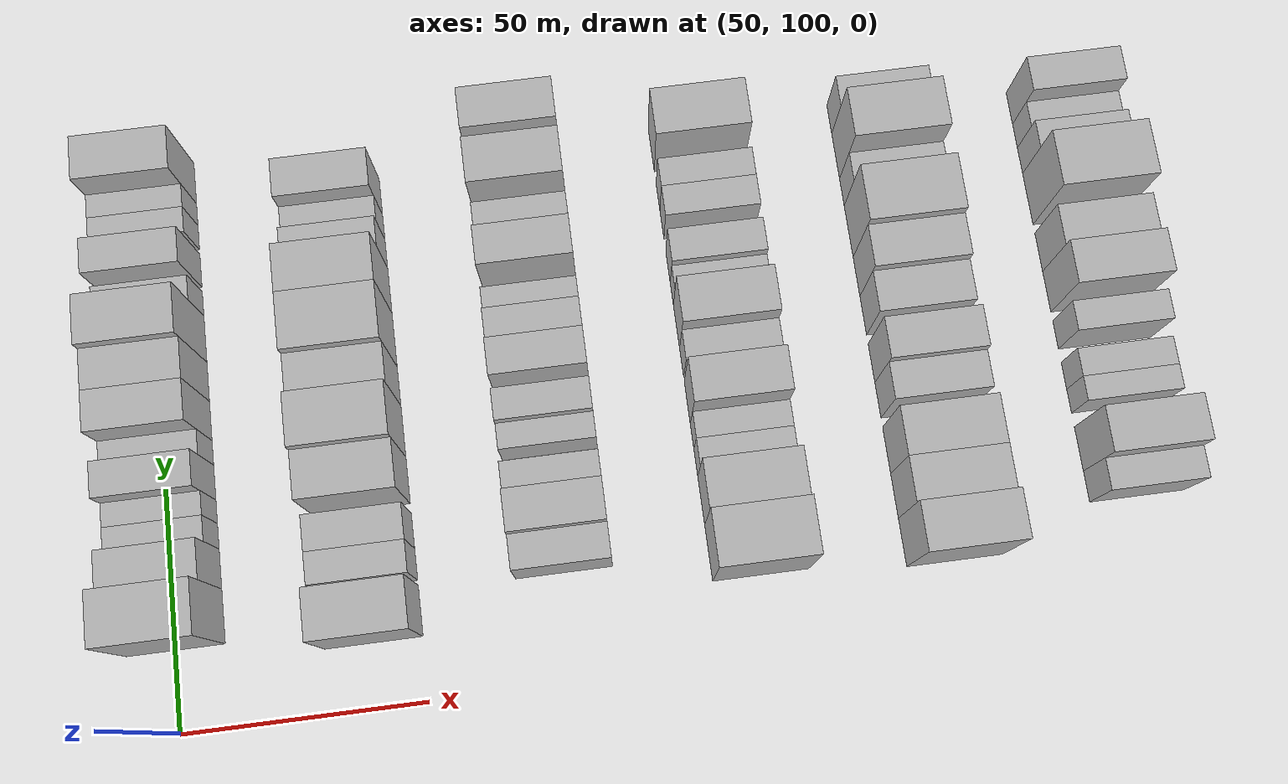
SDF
<sdf version="1.6">
 <world name="default">
  <model name="building_88">
   <static>1</static>
   <pose>50.0000 122.3718 0 0.000000 0.000000 0.000000</pose>
   <link name="link">
    <pose>0 0 12.00 0 0 0</pose>
    <collision name="collision"><geometry><box><size>20.0000 11.1958 24.0000</size></box></geometry></collision>
    <visual name="visual">
     <cast_shadows>0</cast_shadows>
     <geometry><box><size>20.0000 11.1958 24.0000</size></box></geometry>
     <material>
      <script>
       <uri>model://HANNAS_wall/materials/scripts</uri>
       <uri>model://HANNAS_wall/materials/textures</uri>
       <name>vrc/HANNAS_wall</name>
      </script>
     </material>
    </visual>
   </link>
  </model>
  <model name="building_89">
   <static>1</static>
   <pose>50.0000 132.1057 0 0.000000 0.000000 0.000000</pose>
   <link name="link">
    <pose>0 0 9.00 0 0 0</pose>
    <collision name="collision"><geometry><box><size>20.0000 8.2720 18.0000</size></box></geometry></collision>
    <visual name="visual">
     <cast_shadows>0</cast_shadows>
     <geometry><box><size>20.0000 8.2720 18.0000</size></box></geometry>
     <material>
      <script>
       <uri>model://HANNAS_wall/materials/scripts</uri>
       <uri>model://HANNAS_wall/materials/textures</uri>
       <name>vrc/HANNAS_wall</name>
      </script>
     </material>
    </visual>
   </link>
  </model>
  <model name="building_90">
   <static>1</static>
   <pose>50.0000 138.9064 0 0.000000 0.000000 0.000000</pose>
   <link name="link">
    <pose>0 0 6.00 0 0 0</pose>
    <collision name="collision"><geometry><box><size>20.0000 5.3294 12.0000</size></box></geometry></collision>
    <visual name="visual">
     <cast_shadows>0</cast_shadows>
     <geometry><box><size>20.0000 5.3294 12.0000</size></box></geometry>
     <material>
      <script>
       <uri>model://HANNAS_wall/materials/scripts</uri>
       <uri>model://HANNAS_wall/materials/textures</uri>
       <name>vrc/HANNAS_wall</name>
      </script>
     </material>
    </visual>
   </link>
  </model>
  <model name="building_91">
   <static>1</static>
   <pose>50.0000 144.0478 0 0.000000 0.000000 0.000000</pose>
   <link name="link">
    <pose>0 0 6.00 0 0 0</pose>
    <collision name="collision"><geometry><box><size>20.0000 4.9535 12.0000</size></box></geometry></collision>
    <visual name="visual">
     <cast_shadows>0</cast_shadows>
     <geometry><box><size>20.0000 4.9535 12.0000</size></box></geometry>
     <material>
      <script>
       <uri>model://HANNAS_wall/materials/scripts</uri>
       <uri>model://HANNAS_wall/materials/textures</uri>
       <name>vrc/HANNAS_wall</name>
      </script>
     </material>
    </visual>
   </link>
  </model>
  <model name="building_92">
   <static>1</static>
   <pose>50.0000 150.2349 0 0.000000 0.000000 0.000000</pose>
   <link name="link">
    <pose>0 0 9.00 0 0 0</pose>
    <collision name="collision"><geometry><box><size>20.0000 7.4207 18.0000</size></box></geometry></collision>
    <visual name="visual">
     <cast_shadows>0</cast_shadows>
     <geometry><box><size>20.0000 7.4207 18.0000</size></box></geometry>
     <material>
      <script>
       <uri>model://HANNAS_wall/materials/scripts</uri>
       <uri>model://HANNAS_wall/materials/textures</uri>
       <name>vrc/HANNAS_wall</name>
      </script>
     </material>
    </visual>
   </link>
  </model>
  <model name="building_93">
   <static>1</static>
   <pose>50.0000 156.5859 0 0.000000 0.000000 0.000000</pose>
   <link name="link">
    <pose>0 0 6.00 0 0 0</pose>
    <collision name="collision"><geometry><box><size>20.0000 5.2812 12.0000</size></box></geometry></collision>
    <visual name="visual">
     <cast_shadows>0</cast_shadows>
     <geometry><box><size>20.0000 5.2812 12.0000</size></box></geometry>
     <material>
      <script>
       <uri>model://HANNAS_wall/materials/scripts</uri>
       <uri>model://HANNAS_wall/materials/textures</uri>
       <name>vrc/HANNAS_wall</name>
      </script>
     </material>
    </visual>
   </link>
  </model>
  <model name="building_94">
   <static>1</static>
   <pose>50.0000 163.4823 0 0.000000 0.000000 0.000000</pose>
   <link name="link">
    <pose>0 0 10.50 0 0 0</pose>
    <collision name="collision"><geometry><box><size>20.0000 8.5116 21.0000</size></box></geometry></collision>
    <visual name="visual">
     <cast_shadows>0</cast_shadows>
     <geometry><box><size>20.0000 8.5116 21.0000</size></box></geometry>
     <material>
      <script>
       <uri>model://HANNAS_wall/materials/scripts</uri>
       <uri>model://HANNAS_wall/materials/textures</uri>
       <name>vrc/HANNAS_wall</name>
      </script>
     </material>
    </visual>
   </link>
  </model>
  <model name="building_95">
   <static>1</static>
   <pose>50.0000 172.0259 0 0.000000 0.000000 0.000000</pose>
   <link name="link">
    <pose>0 0 10.50 0 0 0</pose>
    <collision name="collision"><geometry><box><size>20.0000 8.5755 21.0000</size></box></geometry></collision>
    <visual name="visual">
     <cast_shadows>0</cast_shadows>
     <geometry><box><size>20.0000 8.5755 21.0000</size></box></geometry>
     <material>
      <script>
       <uri>model://HANNAS_wall/materials/scripts</uri>
       <uri>model://HANNAS_wall/materials/textures</uri>
       <name>vrc/HANNAS_wall</name>
      </script>
     </material>
    </visual>
   </link>
  </model>
  <model name="building_96">
   <static>1</static>
   <pose>50.0000 181.5250 0 0.000000 0.000000 0.000000</pose>
   <link name="link">
    <pose>0 0 12.00 0 0 0</pose>
    <collision name="collision"><geometry><box><size>20.0000 10.4228 24.0000</size></box></geometry></collision>
    <visual name="visual">
     <cast_shadows>0</cast_shadows>
     <geometry><box><size>20.0000 10.4228 24.0000</size></box></geometry>
     <material>
      <script>
       <uri>model://HANNAS_wall/materials/scripts</uri>
       <uri>model://HANNAS_wall/materials/textures</uri>
       <name>vrc/HANNAS_wall</name>
      </script>
     </material>
    </visual>
   </link>
  </model>
  <model name="building_97">
   <static>1</static>
   <pose>50.0000 189.4079 0 0.000000 0.000000 0.000000</pose>
   <link name="link">
    <pose>0 0 6.00 0 0 0</pose>
    <collision name="collision"><geometry><box><size>20.0000 5.3430 12.0000</size></box></geometry></collision>
    <visual name="visual">
     <cast_shadows>0</cast_shadows>
     <geometry><box><size>20.0000 5.3430 12.0000</size></box></geometry>
     <material>
      <script>
       <uri>model://HANNAS_wall/materials/scripts</uri>
       <uri>model://HANNAS_wall/materials/textures</uri>
       <name>vrc/HANNAS_wall</name>
      </script>
     </material>
    </visual>
   </link>
  </model>
  <model name="building_98">
   <static>1</static>
   <pose>50.0000 196.8575 0 0.000000 0.000000 0.000000</pose>
   <link name="link">
    <pose>0 0 9.00 0 0 0</pose>
    <collision name="collision"><geometry><box><size>20.0000 7.5563 18.0000</size></box></geometry></collision>
    <visual name="visual">
     <cast_shadows>0</cast_shadows>
     <geometry><box><size>20.0000 7.5563 18.0000</size></box></geometry>
     <material>
      <script>
       <uri>model://HANNAS_wall/materials/scripts</uri>
       <uri>model://HANNAS_wall/materials/textures</uri>
       <name>vrc/HANNAS_wall</name>
      </script>
     </material>
    </visual>
   </link>
  </model>
  <model name="building_99">
   <static>1</static>
   <pose>50.0000 204.4249 0 0.000000 0.000000 0.000000</pose>
   <link name="link">
    <pose>0 0 6.00 0 0 0</pose>
    <collision name="collision"><geometry><box><size>20.0000 5.5784 12.0000</size></box></geometry></collision>
    <visual name="visual">
     <cast_shadows>0</cast_shadows>
     <geometry><box><size>20.0000 5.5784 12.0000</size></box></geometry>
     <material>
      <script>
       <uri>model://HANNAS_wall/materials/scripts</uri>
       <uri>model://HANNAS_wall/materials/textures</uri>
       <name>vrc/HANNAS_wall</name>
      </script>
     </material>
    </visual>
   </link>
  </model>
  <model name="building_100">
   <static>1</static>
   <pose>50.0000 209.7677 0 0.000000 0.000000 0.000000</pose>
   <link name="link">
    <pose>0 0 6.00 0 0 0</pose>
    <collision name="collision"><geometry><box><size>20.0000 5.1072 12.0000</size></box></geometry></collision>
    <visual name="visual">
     <cast_shadows>0</cast_shadows>
     <geometry><box><size>20.0000 5.1072 12.0000</size></box></geometry>
     <material>
      <script>
       <uri>model://HANNAS_wall/materials/scripts</uri>
       <uri>model://HANNAS_wall/materials/textures</uri>
       <name>vrc/HANNAS_wall</name>
      </script>
     </material>
    </visual>
   </link>
  </model>
  <model name="building_101">
   <static>1</static>
   <pose>50.0000 217.0573 0 0.000000 0.000000 0.000000</pose>
   <link name="link">
    <pose>0 0 10.50 0 0 0</pose>
    <collision name="collision"><geometry><box><size>20.0000 9.4721 21.0000</size></box></geometry></collision>
    <visual name="visual">
     <cast_shadows>0</cast_shadows>
     <geometry><box><size>20.0000 9.4721 21.0000</size></box></geometry>
     <material>
      <script>
       <uri>model://HANNAS_wall/materials/scripts</uri>
       <uri>model://HANNAS_wall/materials/textures</uri>
       <name>vrc/HANNAS_wall</name>
      </script>
     </material>
    </visual>
   </link>
  </model>
  <model name="building_222">
   <static>1</static>
   <pose>90.0000 118.3129 0 0.000000 0.000000 0.000000</pose>
   <link name="link">
    <pose>0 0 10.50 0 0 0</pose>
    <collision name="collision"><geometry><box><size>20.0000 10.4431 21.0000</size></box></geometry></collision>
    <visual name="visual">
     <cast_shadows>0</cast_shadows>
     <geometry><box><size>20.0000 10.4431 21.0000</size></box></geometry>
     <material>
      <script>
       <uri>model://HANNAS_wall/materials/scripts</uri>
       <uri>model://HANNAS_wall/materials/textures</uri>
       <name>vrc/HANNAS_wall</name>
      </script>
     </material>
    </visual>
   </link>
  </model>
  <model name="building_223">
   <static>1</static>
   <pose>90.0000 127.8328 0 0.000000 0.000000 0.000000</pose>
   <link name="link">
    <pose>0 0 7.50 0 0 0</pose>
    <collision name="collision"><geometry><box><size>20.0000 6.5966 15.0000</size></box></geometry></collision>
    <visual name="visual">
     <cast_shadows>0</cast_shadows>
     <geometry><box><size>20.0000 6.5966 15.0000</size></box></geometry>
     <material>
      <script>
       <uri>model://HANNAS_wall/materials/scripts</uri>
       <uri>model://HANNAS_wall/materials/textures</uri>
       <name>vrc/HANNAS_wall</name>
      </script>
     </material>
    </visual>
   </link>
  </model>
  <model name="building_224">
   <static>1</static>
   <pose>90.0000 134.8378 0 0.000000 0.000000 0.000000</pose>
   <link name="link">
    <pose>0 0 7.50 0 0 0</pose>
    <collision name="collision"><geometry><box><size>20.0000 7.4135 15.0000</size></box></geometry></collision>
    <visual name="visual">
     <cast_shadows>0</cast_shadows>
     <geometry><box><size>20.0000 7.4135 15.0000</size></box></geometry>
     <material>
      <script>
       <uri>model://HANNAS_wall/materials/scripts</uri>
       <uri>model://HANNAS_wall/materials/textures</uri>
       <name>vrc/HANNAS_wall</name>
      </script>
     </material>
    </visual>
   </link>
  </model>
  <model name="building_225">
   <static>1</static>
   <pose>90.0000 145.5161 0 0.000000 0.000000 0.000000</pose>
   <link name="link">
    <pose>0 0 10.50 0 0 0</pose>
    <collision name="collision"><geometry><box><size>20.0000 9.9431 21.0000</size></box></geometry></collision>
    <visual name="visual">
     <cast_shadows>0</cast_shadows>
     <geometry><box><size>20.0000 9.9431 21.0000</size></box></geometry>
     <material>
      <script>
       <uri>model://HANNAS_wall/materials/scripts</uri>
       <uri>model://HANNAS_wall/materials/textures</uri>
       <name>vrc/HANNAS_wall</name>
      </script>
     </material>
    </visual>
   </link>
  </model>
  <model name="building_226">
   <static>1</static>
   <pose>90.0000 156.0321 0 0.000000 0.000000 0.000000</pose>
   <link name="link">
    <pose>0 0 12.00 0 0 0</pose>
    <collision name="collision"><geometry><box><size>20.0000 11.0889 24.0000</size></box></geometry></collision>
    <visual name="visual">
     <cast_shadows>0</cast_shadows>
     <geometry><box><size>20.0000 11.0889 24.0000</size></box></geometry>
     <material>
      <script>
       <uri>model://HANNAS_wall/materials/scripts</uri>
       <uri>model://HANNAS_wall/materials/textures</uri>
       <name>vrc/HANNAS_wall</name>
      </script>
     </material>
    </visual>
   </link>
  </model>
  <model name="building_227">
   <static>1</static>
   <pose>90.0000 165.8409 0 0.000000 0.000000 0.000000</pose>
   <link name="link">
    <pose>0 0 10.50 0 0 0</pose>
    <collision name="collision"><geometry><box><size>20.0000 8.5286 21.0000</size></box></geometry></collision>
    <visual name="visual">
     <cast_shadows>0</cast_shadows>
     <geometry><box><size>20.0000 8.5286 21.0000</size></box></geometry>
     <material>
      <script>
       <uri>model://HANNAS_wall/materials/scripts</uri>
       <uri>model://HANNAS_wall/materials/textures</uri>
       <name>vrc/HANNAS_wall</name>
      </script>
     </material>
    </visual>
   </link>
  </model>
  <model name="building_228">
   <static>1</static>
   <pose>90.0000 176.0888 0 0.000000 0.000000 0.000000</pose>
   <link name="link">
    <pose>0 0 12.00 0 0 0</pose>
    <collision name="collision"><geometry><box><size>20.0000 11.9673 24.0000</size></box></geometry></collision>
    <visual name="visual">
     <cast_shadows>0</cast_shadows>
     <geometry><box><size>20.0000 11.9673 24.0000</size></box></geometry>
     <material>
      <script>
       <uri>model://HANNAS_wall/materials/scripts</uri>
       <uri>model://HANNAS_wall/materials/textures</uri>
       <name>vrc/HANNAS_wall</name>
      </script>
     </material>
    </visual>
   </link>
  </model>
  <model name="building_229">
   <static>1</static>
   <pose>90.0000 187.1268 0 0.000000 0.000000 0.000000</pose>
   <link name="link">
    <pose>0 0 12.00 0 0 0</pose>
    <collision name="collision"><geometry><box><size>20.0000 10.1087 24.0000</size></box></geometry></collision>
    <visual name="visual">
     <cast_shadows>0</cast_shadows>
     <geometry><box><size>20.0000 10.1087 24.0000</size></box></geometry>
     <material>
      <script>
       <uri>model://HANNAS_wall/materials/scripts</uri>
       <uri>model://HANNAS_wall/materials/textures</uri>
       <name>vrc/HANNAS_wall</name>
      </script>
     </material>
    </visual>
   </link>
  </model>
  <model name="building_230">
   <static>1</static>
   <pose>90.0000 195.5069 0 0.000000 0.000000 0.000000</pose>
   <link name="link">
    <pose>0 0 7.50 0 0 0</pose>
    <collision name="collision"><geometry><box><size>20.0000 6.6516 15.0000</size></box></geometry></collision>
    <visual name="visual">
     <cast_shadows>0</cast_shadows>
     <geometry><box><size>20.0000 6.6516 15.0000</size></box></geometry>
     <material>
      <script>
       <uri>model://HANNAS_wall/materials/scripts</uri>
       <uri>model://HANNAS_wall/materials/textures</uri>
       <name>vrc/HANNAS_wall</name>
      </script>
     </material>
    </visual>
   </link>
  </model>
  <model name="building_231">
   <static>1</static>
   <pose>90.0000 201.6679 0 0.000000 0.000000 0.000000</pose>
   <link name="link">
    <pose>0 0 6.00 0 0 0</pose>
    <collision name="collision"><geometry><box><size>20.0000 5.6704 12.0000</size></box></geometry></collision>
    <visual name="visual">
     <cast_shadows>0</cast_shadows>
     <geometry><box><size>20.0000 5.6704 12.0000</size></box></geometry>
     <material>
      <script>
       <uri>model://HANNAS_wall/materials/scripts</uri>
       <uri>model://HANNAS_wall/materials/textures</uri>
       <name>vrc/HANNAS_wall</name>
      </script>
     </material>
    </visual>
   </link>
  </model>
  <model name="building_232">
   <static>1</static>
   <pose>90.0000 208.6926 0 0.000000 0.000000 0.000000</pose>
   <link name="link">
    <pose>0 0 9.00 0 0 0</pose>
    <collision name="collision"><geometry><box><size>20.0000 8.3789 18.0000</size></box></geometry></collision>
    <visual name="visual">
     <cast_shadows>0</cast_shadows>
     <geometry><box><size>20.0000 8.3789 18.0000</size></box></geometry>
     <material>
      <script>
       <uri>model://HANNAS_wall/materials/scripts</uri>
       <uri>model://HANNAS_wall/materials/textures</uri>
       <name>vrc/HANNAS_wall</name>
      </script>
     </material>
    </visual>
   </link>
  </model>
  <model name="building_362">
   <static>1</static>
   <pose>130.0000 125.8504 0 0.000000 0.000000 0.000000</pose>
   <link name="link">
    <pose>0 0 7.50 0 0 0</pose>
    <collision name="collision"><geometry><box><size>20.0000 7.2017 15.0000</size></box></geometry></collision>
    <visual name="visual">
     <cast_shadows>0</cast_shadows>
     <geometry><box><size>20.0000 7.2017 15.0000</size></box></geometry>
     <material>
      <script>
       <uri>model://HANNAS_wall/materials/scripts</uri>
       <uri>model://HANNAS_wall/materials/textures</uri>
       <name>vrc/HANNAS_wall</name>
      </script>
     </material>
    </visual>
   </link>
  </model>
  <model name="building_363">
   <static>1</static>
   <pose>130.0000 133.7838 0 0.000000 0.000000 0.000000</pose>
   <link name="link">
    <pose>0 0 9.00 0 0 0</pose>
    <collision name="collision"><geometry><box><size>20.0000 8.6650 18.0000</size></box></geometry></collision>
    <visual name="visual">
     <cast_shadows>0</cast_shadows>
     <geometry><box><size>20.0000 8.6650 18.0000</size></box></geometry>
     <material>
      <script>
       <uri>model://HANNAS_wall/materials/scripts</uri>
       <uri>model://HANNAS_wall/materials/textures</uri>
       <name>vrc/HANNAS_wall</name>
      </script>
     </material>
    </visual>
   </link>
  </model>
  <model name="building_364">
   <static>1</static>
   <pose>130.0000 141.1264 0 0.000000 0.000000 0.000000</pose>
   <link name="link">
    <pose>0 0 7.50 0 0 0</pose>
    <collision name="collision"><geometry><box><size>20.0000 6.0203 15.0000</size></box></geometry></collision>
    <visual name="visual">
     <cast_shadows>0</cast_shadows>
     <geometry><box><size>20.0000 6.0203 15.0000</size></box></geometry>
     <material>
      <script>
       <uri>model://HANNAS_wall/materials/scripts</uri>
       <uri>model://HANNAS_wall/materials/textures</uri>
       <name>vrc/HANNAS_wall</name>
      </script>
     </material>
    </visual>
   </link>
  </model>
  <model name="building_365">
   <static>1</static>
   <pose>130.0000 149.8466 0 0.000000 0.000000 0.000000</pose>
   <link name="link">
    <pose>0 0 6.00 0 0 0</pose>
    <collision name="collision"><geometry><box><size>20.0000 5.4200 12.0000</size></box></geometry></collision>
    <visual name="visual">
     <cast_shadows>0</cast_shadows>
     <geometry><box><size>20.0000 5.4200 12.0000</size></box></geometry>
     <material>
      <script>
       <uri>model://HANNAS_wall/materials/scripts</uri>
       <uri>model://HANNAS_wall/materials/textures</uri>
       <name>vrc/HANNAS_wall</name>
      </script>
     </material>
    </visual>
   </link>
  </model>
  <model name="building_366">
   <static>1</static>
   <pose>130.0000 155.9027 0 0.000000 0.000000 0.000000</pose>
   <link name="link">
    <pose>0 0 7.50 0 0 0</pose>
    <collision name="collision"><geometry><box><size>20.0000 6.6922 15.0000</size></box></geometry></collision>
    <visual name="visual">
     <cast_shadows>0</cast_shadows>
     <geometry><box><size>20.0000 6.6922 15.0000</size></box></geometry>
     <material>
      <script>
       <uri>model://HANNAS_wall/materials/scripts</uri>
       <uri>model://HANNAS_wall/materials/textures</uri>
       <name>vrc/HANNAS_wall</name>
      </script>
     </material>
    </visual>
   </link>
  </model>
  <model name="building_367">
   <static>1</static>
   <pose>130.0000 165.1593 0 0.000000 0.000000 0.000000</pose>
   <link name="link">
    <pose>0 0 9.00 0 0 0</pose>
    <collision name="collision"><geometry><box><size>20.0000 7.8209 18.0000</size></box></geometry></collision>
    <visual name="visual">
     <cast_shadows>0</cast_shadows>
     <geometry><box><size>20.0000 7.8209 18.0000</size></box></geometry>
     <material>
      <script>
       <uri>model://HANNAS_wall/materials/scripts</uri>
       <uri>model://HANNAS_wall/materials/textures</uri>
       <name>vrc/HANNAS_wall</name>
      </script>
     </material>
    </visual>
   </link>
  </model>
  <model name="building_368">
   <static>1</static>
   <pose>130.0000 172.6258 0 0.000000 0.000000 0.000000</pose>
   <link name="link">
    <pose>0 0 7.50 0 0 0</pose>
    <collision name="collision"><geometry><box><size>20.0000 7.1121 15.0000</size></box></geometry></collision>
    <visual name="visual">
     <cast_shadows>0</cast_shadows>
     <geometry><box><size>20.0000 7.1121 15.0000</size></box></geometry>
     <material>
      <script>
       <uri>model://HANNAS_wall/materials/scripts</uri>
       <uri>model://HANNAS_wall/materials/textures</uri>
       <name>vrc/HANNAS_wall</name>
      </script>
     </material>
    </visual>
   </link>
  </model>
  <model name="building_369">
   <static>1</static>
   <pose>130.0000 178.8779 0 0.000000 0.000000 0.000000</pose>
   <link name="link">
    <pose>0 0 6.00 0 0 0</pose>
    <collision name="collision"><geometry><box><size>20.0000 5.3922 12.0000</size></box></geometry></collision>
    <visual name="visual">
     <cast_shadows>0</cast_shadows>
     <geometry><box><size>20.0000 5.3922 12.0000</size></box></geometry>
     <material>
      <script>
       <uri>model://HANNAS_wall/materials/scripts</uri>
       <uri>model://HANNAS_wall/materials/textures</uri>
       <name>vrc/HANNAS_wall</name>
      </script>
     </material>
    </visual>
   </link>
  </model>
  <model name="building_370">
   <static>1</static>
   <pose>130.0000 188.8209 0 0.000000 0.000000 0.000000</pose>
   <link name="link">
    <pose>0 0 9.00 0 0 0</pose>
    <collision name="collision"><geometry><box><size>20.0000 8.4938 18.0000</size></box></geometry></collision>
    <visual name="visual">
     <cast_shadows>0</cast_shadows>
     <geometry><box><size>20.0000 8.4938 18.0000</size></box></geometry>
     <material>
      <script>
       <uri>model://HANNAS_wall/materials/scripts</uri>
       <uri>model://HANNAS_wall/materials/textures</uri>
       <name>vrc/HANNAS_wall</name>
      </script>
     </material>
    </visual>
   </link>
  </model>
  <model name="building_371">
   <static>1</static>
   <pose>130.0000 197.7040 0 0.000000 0.000000 0.000000</pose>
   <link name="link">
    <pose>0 0 6.00 0 0 0</pose>
    <collision name="collision"><geometry><box><size>20.0000 5.2724 12.0000</size></box></geometry></collision>
    <visual name="visual">
     <cast_shadows>0</cast_shadows>
     <geometry><box><size>20.0000 5.2724 12.0000</size></box></geometry>
     <material>
      <script>
       <uri>model://HANNAS_wall/materials/scripts</uri>
       <uri>model://HANNAS_wall/materials/textures</uri>
       <name>vrc/HANNAS_wall</name>
      </script>
     </material>
    </visual>
   </link>
  </model>
  <model name="building_372">
   <static>1</static>
   <pose>130.0000 206.3497 0 0.000000 0.000000 0.000000</pose>
   <link name="link">
    <pose>0 0 10.50 0 0 0</pose>
    <collision name="collision"><geometry><box><size>20.0000 10.0189 21.0000</size></box></geometry></collision>
    <visual name="visual">
     <cast_shadows>0</cast_shadows>
     <geometry><box><size>20.0000 10.0189 21.0000</size></box></geometry>
     <material>
      <script>
       <uri>model://HANNAS_wall/materials/scripts</uri>
       <uri>model://HANNAS_wall/materials/textures</uri>
       <name>vrc/HANNAS_wall</name>
      </script>
     </material>
    </visual>
   </link>
  </model>
  <model name="building_373">
   <static>1</static>
   <pose>130.0000 217.8695 0 0.000000 0.000000 0.000000</pose>
   <link name="link">
    <pose>0 0 10.50 0 0 0</pose>
    <collision name="collision"><geometry><box><size>20.0000 9.0209 21.0000</size></box></geometry></collision>
    <visual name="visual">
     <cast_shadows>0</cast_shadows>
     <geometry><box><size>20.0000 9.0209 21.0000</size></box></geometry>
     <material>
      <script>
       <uri>model://HANNAS_wall/materials/scripts</uri>
       <uri>model://HANNAS_wall/materials/textures</uri>
       <name>vrc/HANNAS_wall</name>
      </script>
     </material>
    </visual>
   </link>
  </model>
  <model name="building_501">
   <static>1</static>
   <pose>170.0000 122.3928 0 0.000000 0.000000 0.000000</pose>
   <link name="link">
    <pose>0 0 12.00 0 0 0</pose>
    <collision name="collision"><geometry><box><size>20.0000 11.6262 24.0000</size></box></geometry></collision>
    <visual name="visual">
     <cast_shadows>0</cast_shadows>
     <geometry><box><size>20.0000 11.6262 24.0000</size></box></geometry>
     <material>
      <script>
       <uri>model://HANNAS_wall/materials/scripts</uri>
       <uri>model://HANNAS_wall/materials/textures</uri>
       <name>vrc/HANNAS_wall</name>
      </script>
     </material>
    </visual>
   </link>
  </model>
  <model name="building_502">
   <static>1</static>
   <pose>170.0000 133.3474 0 0.000000 0.000000 0.000000</pose>
   <link name="link">
    <pose>0 0 10.50 0 0 0</pose>
    <collision name="collision"><geometry><box><size>20.0000 10.2829 21.0000</size></box></geometry></collision>
    <visual name="visual">
     <cast_shadows>0</cast_shadows>
     <geometry><box><size>20.0000 10.2829 21.0000</size></box></geometry>
     <material>
      <script>
       <uri>model://HANNAS_wall/materials/scripts</uri>
       <uri>model://HANNAS_wall/materials/textures</uri>
       <name>vrc/HANNAS_wall</name>
      </script>
     </material>
    </visual>
   </link>
  </model>
  <model name="building_503">
   <static>1</static>
   <pose>170.0000 141.4147 0 0.000000 0.000000 0.000000</pose>
   <link name="link">
    <pose>0 0 6.00 0 0 0</pose>
    <collision name="collision"><geometry><box><size>20.0000 5.8517 12.0000</size></box></geometry></collision>
    <visual name="visual">
     <cast_shadows>0</cast_shadows>
     <geometry><box><size>20.0000 5.8517 12.0000</size></box></geometry>
     <material>
      <script>
       <uri>model://HANNAS_wall/materials/scripts</uri>
       <uri>model://HANNAS_wall/materials/textures</uri>
       <name>vrc/HANNAS_wall</name>
      </script>
     </material>
    </visual>
   </link>
  </model>
  <model name="building_504">
   <static>1</static>
   <pose>170.0000 147.0827 0 0.000000 0.000000 0.000000</pose>
   <link name="link">
    <pose>0 0 6.00 0 0 0</pose>
    <collision name="collision"><geometry><box><size>20.0000 5.4843 12.0000</size></box></geometry></collision>
    <visual name="visual">
     <cast_shadows>0</cast_shadows>
     <geometry><box><size>20.0000 5.4843 12.0000</size></box></geometry>
     <material>
      <script>
       <uri>model://HANNAS_wall/materials/scripts</uri>
       <uri>model://HANNAS_wall/materials/textures</uri>
       <name>vrc/HANNAS_wall</name>
      </script>
     </material>
    </visual>
   </link>
  </model>
  <model name="building_505">
   <static>1</static>
   <pose>170.0000 154.4125 0 0.000000 0.000000 0.000000</pose>
   <link name="link">
    <pose>0 0 10.50 0 0 0</pose>
    <collision name="collision"><geometry><box><size>20.0000 9.1752 21.0000</size></box></geometry></collision>
    <visual name="visual">
     <cast_shadows>0</cast_shadows>
     <geometry><box><size>20.0000 9.1752 21.0000</size></box></geometry>
     <material>
      <script>
       <uri>model://HANNAS_wall/materials/scripts</uri>
       <uri>model://HANNAS_wall/materials/textures</uri>
       <name>vrc/HANNAS_wall</name>
      </script>
     </material>
    </visual>
   </link>
  </model>
  <model name="building_506">
   <static>1</static>
   <pose>170.0000 163.1636 0 0.000000 0.000000 0.000000</pose>
   <link name="link">
    <pose>0 0 7.50 0 0 0</pose>
    <collision name="collision"><geometry><box><size>20.0000 6.3272 15.0000</size></box></geometry></collision>
    <visual name="visual">
     <cast_shadows>0</cast_shadows>
     <geometry><box><size>20.0000 6.3272 15.0000</size></box></geometry>
     <material>
      <script>
       <uri>model://HANNAS_wall/materials/scripts</uri>
       <uri>model://HANNAS_wall/materials/textures</uri>
       <name>vrc/HANNAS_wall</name>
      </script>
     </material>
    </visual>
   </link>
  </model>
  <model name="building_507">
   <static>1</static>
   <pose>170.0000 171.1048 0 0.000000 0.000000 0.000000</pose>
   <link name="link">
    <pose>0 0 10.50 0 0 0</pose>
    <collision name="collision"><geometry><box><size>20.0000 9.5552 21.0000</size></box></geometry></collision>
    <visual name="visual">
     <cast_shadows>0</cast_shadows>
     <geometry><box><size>20.0000 9.5552 21.0000</size></box></geometry>
     <material>
      <script>
       <uri>model://HANNAS_wall/materials/scripts</uri>
       <uri>model://HANNAS_wall/materials/textures</uri>
       <name>vrc/HANNAS_wall</name>
      </script>
     </material>
    </visual>
   </link>
  </model>
  <model name="building_508">
   <static>1</static>
   <pose>170.0000 178.4891 0 0.000000 0.000000 0.000000</pose>
   <link name="link">
    <pose>0 0 6.00 0 0 0</pose>
    <collision name="collision"><geometry><box><size>20.0000 5.2133 12.0000</size></box></geometry></collision>
    <visual name="visual">
     <cast_shadows>0</cast_shadows>
     <geometry><box><size>20.0000 5.2133 12.0000</size></box></geometry>
     <material>
      <script>
       <uri>model://HANNAS_wall/materials/scripts</uri>
       <uri>model://HANNAS_wall/materials/textures</uri>
       <name>vrc/HANNAS_wall</name>
      </script>
     </material>
    </visual>
   </link>
  </model>
  <model name="building_509">
   <static>1</static>
   <pose>170.0000 184.6242 0 0.000000 0.000000 0.000000</pose>
   <link name="link">
    <pose>0 0 7.50 0 0 0</pose>
    <collision name="collision"><geometry><box><size>20.0000 7.0568 15.0000</size></box></geometry></collision>
    <visual name="visual">
     <cast_shadows>0</cast_shadows>
     <geometry><box><size>20.0000 7.0568 15.0000</size></box></geometry>
     <material>
      <script>
       <uri>model://HANNAS_wall/materials/scripts</uri>
       <uri>model://HANNAS_wall/materials/textures</uri>
       <name>vrc/HANNAS_wall</name>
      </script>
     </material>
    </visual>
   </link>
  </model>
  <model name="building_510">
   <static>1</static>
   <pose>170.0000 194.4171 0 0.000000 0.000000 0.000000</pose>
   <link name="link">
    <pose>0 0 7.50 0 0 0</pose>
    <collision name="collision"><geometry><box><size>20.0000 6.5290 15.0000</size></box></geometry></collision>
    <visual name="visual">
     <cast_shadows>0</cast_shadows>
     <geometry><box><size>20.0000 6.5290 15.0000</size></box></geometry>
     <material>
      <script>
       <uri>model://HANNAS_wall/materials/scripts</uri>
       <uri>model://HANNAS_wall/materials/textures</uri>
       <name>vrc/HANNAS_wall</name>
      </script>
     </material>
    </visual>
   </link>
  </model>
  <model name="building_511">
   <static>1</static>
   <pose>170.0000 200.7363 0 0.000000 0.000000 0.000000</pose>
   <link name="link">
    <pose>0 0 7.50 0 0 0</pose>
    <collision name="collision"><geometry><box><size>20.0000 6.1094 15.0000</size></box></geometry></collision>
    <visual name="visual">
     <cast_shadows>0</cast_shadows>
     <geometry><box><size>20.0000 6.1094 15.0000</size></box></geometry>
     <material>
      <script>
       <uri>model://HANNAS_wall/materials/scripts</uri>
       <uri>model://HANNAS_wall/materials/textures</uri>
       <name>vrc/HANNAS_wall</name>
      </script>
     </material>
    </visual>
   </link>
  </model>
  <model name="building_512">
   <static>1</static>
   <pose>170.0000 211.8657 0 0.000000 0.000000 0.000000</pose>
   <link name="link">
    <pose>0 0 10.50 0 0 0</pose>
    <collision name="collision"><geometry><box><size>20.0000 10.1495 21.0000</size></box></geometry></collision>
    <visual name="visual">
     <cast_shadows>0</cast_shadows>
     <geometry><box><size>20.0000 10.1495 21.0000</size></box></geometry>
     <material>
      <script>
       <uri>model://HANNAS_wall/materials/scripts</uri>
       <uri>model://HANNAS_wall/materials/textures</uri>
       <name>vrc/HANNAS_wall</name>
      </script>
     </material>
    </visual>
   </link>
  </model>
  <model name="building_647">
   <static>1</static>
   <pose>210.0000 119.4013 0 0.000000 0.000000 0.000000</pose>
   <link name="link">
    <pose>0 0 12.00 0 0 0</pose>
    <collision name="collision"><geometry><box><size>20.0000 10.0498 24.0000</size></box></geometry></collision>
    <visual name="visual">
     <cast_shadows>0</cast_shadows>
     <geometry><box><size>20.0000 10.0498 24.0000</size></box></geometry>
     <material>
      <script>
       <uri>model://HANNAS_wall/materials/scripts</uri>
       <uri>model://HANNAS_wall/materials/textures</uri>
       <name>vrc/HANNAS_wall</name>
      </script>
     </material>
    </visual>
   </link>
  </model>
  <model name="building_648">
   <static>1</static>
   <pose>210.0000 129.1234 0 0.000000 0.000000 0.000000</pose>
   <link name="link">
    <pose>0 0 10.50 0 0 0</pose>
    <collision name="collision"><geometry><box><size>20.0000 9.3945 21.0000</size></box></geometry></collision>
    <visual name="visual">
     <cast_shadows>0</cast_shadows>
     <geometry><box><size>20.0000 9.3945 21.0000</size></box></geometry>
     <material>
      <script>
       <uri>model://HANNAS_wall/materials/scripts</uri>
       <uri>model://HANNAS_wall/materials/textures</uri>
       <name>vrc/HANNAS_wall</name>
      </script>
     </material>
    </visual>
   </link>
  </model>
  <model name="building_649">
   <static>1</static>
   <pose>210.0000 138.8618 0 0.000000 0.000000 0.000000</pose>
   <link name="link">
    <pose>0 0 10.50 0 0 0</pose>
    <collision name="collision"><geometry><box><size>20.0000 10.0823 21.0000</size></box></geometry></collision>
    <visual name="visual">
     <cast_shadows>0</cast_shadows>
     <geometry><box><size>20.0000 10.0823 21.0000</size></box></geometry>
     <material>
      <script>
       <uri>model://HANNAS_wall/materials/scripts</uri>
       <uri>model://HANNAS_wall/materials/textures</uri>
       <name>vrc/HANNAS_wall</name>
      </script>
     </material>
    </visual>
   </link>
  </model>
  <model name="building_650">
   <static>1</static>
   <pose>210.0000 149.7513 0 0.000000 0.000000 0.000000</pose>
   <link name="link">
    <pose>0 0 9.00 0 0 0</pose>
    <collision name="collision"><geometry><box><size>20.0000 7.6967 18.0000</size></box></geometry></collision>
    <visual name="visual">
     <cast_shadows>0</cast_shadows>
     <geometry><box><size>20.0000 7.6967 18.0000</size></box></geometry>
     <material>
      <script>
       <uri>model://HANNAS_wall/materials/scripts</uri>
       <uri>model://HANNAS_wall/materials/textures</uri>
       <name>vrc/HANNAS_wall</name>
      </script>
     </material>
    </visual>
   </link>
  </model>
  <model name="building_651">
   <static>1</static>
   <pose>210.0000 157.8907 0 0.000000 0.000000 0.000000</pose>
   <link name="link">
    <pose>0 0 10.50 0 0 0</pose>
    <collision name="collision"><geometry><box><size>20.0000 8.5820 21.0000</size></box></geometry></collision>
    <visual name="visual">
     <cast_shadows>0</cast_shadows>
     <geometry><box><size>20.0000 8.5820 21.0000</size></box></geometry>
     <material>
      <script>
       <uri>model://HANNAS_wall/materials/scripts</uri>
       <uri>model://HANNAS_wall/materials/textures</uri>
       <name>vrc/HANNAS_wall</name>
      </script>
     </material>
    </visual>
   </link>
  </model>
  <model name="building_652">
   <static>1</static>
   <pose>210.0000 168.5025 0 0.000000 0.000000 0.000000</pose>
   <link name="link">
    <pose>0 0 9.00 0 0 0</pose>
    <collision name="collision"><geometry><box><size>20.0000 8.6416 18.0000</size></box></geometry></collision>
    <visual name="visual">
     <cast_shadows>0</cast_shadows>
     <geometry><box><size>20.0000 8.6416 18.0000</size></box></geometry>
     <material>
      <script>
       <uri>model://HANNAS_wall/materials/scripts</uri>
       <uri>model://HANNAS_wall/materials/textures</uri>
       <name>vrc/HANNAS_wall</name>
      </script>
     </material>
    </visual>
   </link>
  </model>
  <model name="building_653">
   <static>1</static>
   <pose>210.0000 177.2739 0 0.000000 0.000000 0.000000</pose>
   <link name="link">
    <pose>0 0 10.50 0 0 0</pose>
    <collision name="collision"><geometry><box><size>20.0000 8.9013 21.0000</size></box></geometry></collision>
    <visual name="visual">
     <cast_shadows>0</cast_shadows>
     <geometry><box><size>20.0000 8.9013 21.0000</size></box></geometry>
     <material>
      <script>
       <uri>model://HANNAS_wall/materials/scripts</uri>
       <uri>model://HANNAS_wall/materials/textures</uri>
       <name>vrc/HANNAS_wall</name>
      </script>
     </material>
    </visual>
   </link>
  </model>
  <model name="building_654">
   <static>1</static>
   <pose>210.0000 187.6736 0 0.000000 0.000000 0.000000</pose>
   <link name="link">
    <pose>0 0 12.00 0 0 0</pose>
    <collision name="collision"><geometry><box><size>20.0000 11.8981 24.0000</size></box></geometry></collision>
    <visual name="visual">
     <cast_shadows>0</cast_shadows>
     <geometry><box><size>20.0000 11.8981 24.0000</size></box></geometry>
     <material>
      <script>
       <uri>model://HANNAS_wall/materials/scripts</uri>
       <uri>model://HANNAS_wall/materials/textures</uri>
       <name>vrc/HANNAS_wall</name>
      </script>
     </material>
    </visual>
   </link>
  </model>
  <model name="building_655">
   <static>1</static>
   <pose>210.0000 196.7610 0 0.000000 0.000000 0.000000</pose>
   <link name="link">
    <pose>0 0 7.50 0 0 0</pose>
    <collision name="collision"><geometry><box><size>20.0000 6.2766 15.0000</size></box></geometry></collision>
    <visual name="visual">
     <cast_shadows>0</cast_shadows>
     <geometry><box><size>20.0000 6.2766 15.0000</size></box></geometry>
     <material>
      <script>
       <uri>model://HANNAS_wall/materials/scripts</uri>
       <uri>model://HANNAS_wall/materials/textures</uri>
       <name>vrc/HANNAS_wall</name>
      </script>
     </material>
    </visual>
   </link>
  </model>
  <model name="building_656">
   <static>1</static>
   <pose>210.0000 205.2445 0 0.000000 0.000000 0.000000</pose>
   <link name="link">
    <pose>0 0 12.00 0 0 0</pose>
    <collision name="collision"><geometry><box><size>20.0000 10.6904 24.0000</size></box></geometry></collision>
    <visual name="visual">
     <cast_shadows>0</cast_shadows>
     <geometry><box><size>20.0000 10.6904 24.0000</size></box></geometry>
     <material>
      <script>
       <uri>model://HANNAS_wall/materials/scripts</uri>
       <uri>model://HANNAS_wall/materials/textures</uri>
       <name>vrc/HANNAS_wall</name>
      </script>
     </material>
    </visual>
   </link>
  </model>
  <model name="building_657">
   <static>1</static>
   <pose>210.0000 213.9738 0 0.000000 0.000000 0.000000</pose>
   <link name="link">
    <pose>0 0 7.50 0 0 0</pose>
    <collision name="collision"><geometry><box><size>20.0000 6.7682 15.0000</size></box></geometry></collision>
    <visual name="visual">
     <cast_shadows>0</cast_shadows>
     <geometry><box><size>20.0000 6.7682 15.0000</size></box></geometry>
     <material>
      <script>
       <uri>model://HANNAS_wall/materials/scripts</uri>
       <uri>model://HANNAS_wall/materials/textures</uri>
       <name>vrc/HANNAS_wall</name>
      </script>
     </material>
    </visual>
   </link>
  </model>
  <model name="building_785">
   <static>1</static>
   <pose>250.0000 125.9904 0 0.000000 0.000000 0.000000</pose>
   <link name="link">
    <pose>0 0 7.50 0 0 0</pose>
    <collision name="collision"><geometry><box><size>20.0000 6.5820 15.0000</size></box></geometry></collision>
    <visual name="visual">
     <cast_shadows>0</cast_shadows>
     <geometry><box><size>20.0000 6.5820 15.0000</size></box></geometry>
     <material>
      <script>
       <uri>model://HANNAS_wall/materials/scripts</uri>
       <uri>model://HANNAS_wall/materials/textures</uri>
       <name>vrc/HANNAS_wall</name>
      </script>
     </material>
    </visual>
   </link>
  </model>
  <model name="building_786">
   <static>1</static>
   <pose>250.0000 134.0252 0 0.000000 0.000000 0.000000</pose>
   <link name="link">
    <pose>0 0 10.50 0 0 0</pose>
    <collision name="collision"><geometry><box><size>20.0000 9.4876 21.0000</size></box></geometry></collision>
    <visual name="visual">
     <cast_shadows>0</cast_shadows>
     <geometry><box><size>20.0000 9.4876 21.0000</size></box></geometry>
     <material>
      <script>
       <uri>model://HANNAS_wall/materials/scripts</uri>
       <uri>model://HANNAS_wall/materials/textures</uri>
       <name>vrc/HANNAS_wall</name>
      </script>
     </material>
    </visual>
   </link>
  </model>
  <model name="building_787">
   <static>1</static>
   <pose>250.0000 144.3543 0 0.000000 0.000000 0.000000</pose>
   <link name="link">
    <pose>0 0 6.00 0 0 0</pose>
    <collision name="collision"><geometry><box><size>20.0000 5.1707 12.0000</size></box></geometry></collision>
    <visual name="visual">
     <cast_shadows>0</cast_shadows>
     <geometry><box><size>20.0000 5.1707 12.0000</size></box></geometry>
     <material>
      <script>
       <uri>model://HANNAS_wall/materials/scripts</uri>
       <uri>model://HANNAS_wall/materials/textures</uri>
       <name>vrc/HANNAS_wall</name>
      </script>
     </material>
    </visual>
   </link>
  </model>
  <model name="building_788">
   <static>1</static>
   <pose>250.0000 149.8937 0 0.000000 0.000000 0.000000</pose>
   <link name="link">
    <pose>0 0 6.00 0 0 0</pose>
    <collision name="collision"><geometry><box><size>20.0000 5.9080 12.0000</size></box></geometry></collision>
    <visual name="visual">
     <cast_shadows>0</cast_shadows>
     <geometry><box><size>20.0000 5.9080 12.0000</size></box></geometry>
     <material>
      <script>
       <uri>model://HANNAS_wall/materials/scripts</uri>
       <uri>model://HANNAS_wall/materials/textures</uri>
       <name>vrc/HANNAS_wall</name>
      </script>
     </material>
    </visual>
   </link>
  </model>
  <model name="building_789">
   <static>1</static>
   <pose>250.0000 158.9913 0 0.000000 0.000000 0.000000</pose>
   <link name="link">
    <pose>0 0 7.50 0 0 0</pose>
    <collision name="collision"><geometry><box><size>20.0000 6.2871 15.0000</size></box></geometry></collision>
    <visual name="visual">
     <cast_shadows>0</cast_shadows>
     <geometry><box><size>20.0000 6.2871 15.0000</size></box></geometry>
     <material>
      <script>
       <uri>model://HANNAS_wall/materials/scripts</uri>
       <uri>model://HANNAS_wall/materials/textures</uri>
       <name>vrc/HANNAS_wall</name>
      </script>
     </material>
    </visual>
   </link>
  </model>
  <model name="building_790">
   <static>1</static>
   <pose>250.0000 168.7045 0 0.000000 0.000000 0.000000</pose>
   <link name="link">
    <pose>0 0 10.50 0 0 0</pose>
    <collision name="collision"><geometry><box><size>20.0000 9.1393 21.0000</size></box></geometry></collision>
    <visual name="visual">
     <cast_shadows>0</cast_shadows>
     <geometry><box><size>20.0000 9.1393 21.0000</size></box></geometry>
     <material>
      <script>
       <uri>model://HANNAS_wall/materials/scripts</uri>
       <uri>model://HANNAS_wall/materials/textures</uri>
       <name>vrc/HANNAS_wall</name>
      </script>
     </material>
    </visual>
   </link>
  </model>
  <model name="building_791">
   <static>1</static>
   <pose>250.0000 177.6589 0 0.000000 0.000000 0.000000</pose>
   <link name="link">
    <pose>0 0 9.00 0 0 0</pose>
    <collision name="collision"><geometry><box><size>20.0000 8.7697 18.0000</size></box></geometry></collision>
    <visual name="visual">
     <cast_shadows>0</cast_shadows>
     <geometry><box><size>20.0000 8.7697 18.0000</size></box></geometry>
     <material>
      <script>
       <uri>model://HANNAS_wall/materials/scripts</uri>
       <uri>model://HANNAS_wall/materials/textures</uri>
       <name>vrc/HANNAS_wall</name>
      </script>
     </material>
    </visual>
   </link>
  </model>
  <model name="building_792">
   <static>1</static>
   <pose>250.0000 189.9901 0 0.000000 0.000000 0.000000</pose>
   <link name="link">
    <pose>0 0 12.00 0 0 0</pose>
    <collision name="collision"><geometry><box><size>20.0000 11.8926 24.0000</size></box></geometry></collision>
    <visual name="visual">
     <cast_shadows>0</cast_shadows>
     <geometry><box><size>20.0000 11.8926 24.0000</size></box></geometry>
     <material>
      <script>
       <uri>model://HANNAS_wall/materials/scripts</uri>
       <uri>model://HANNAS_wall/materials/textures</uri>
       <name>vrc/HANNAS_wall</name>
      </script>
     </material>
    </visual>
   </link>
  </model>
  <model name="building_793">
   <static>1</static>
   <pose>250.0000 198.9733 0 0.000000 0.000000 0.000000</pose>
   <link name="link">
    <pose>0 0 7.50 0 0 0</pose>
    <collision name="collision"><geometry><box><size>20.0000 6.0739 15.0000</size></box></geometry></collision>
    <visual name="visual">
     <cast_shadows>0</cast_shadows>
     <geometry><box><size>20.0000 6.0739 15.0000</size></box></geometry>
     <material>
      <script>
       <uri>model://HANNAS_wall/materials/scripts</uri>
       <uri>model://HANNAS_wall/materials/textures</uri>
       <name>vrc/HANNAS_wall</name>
      </script>
     </material>
    </visual>
   </link>
  </model>
  <model name="building_794">
   <static>1</static>
   <pose>250.0000 204.8206 0 0.000000 0.000000 0.000000</pose>
   <link name="link">
    <pose>0 0 6.00 0 0 0</pose>
    <collision name="collision"><geometry><box><size>20.0000 5.6207 12.0000</size></box></geometry></collision>
    <visual name="visual">
     <cast_shadows>0</cast_shadows>
     <geometry><box><size>20.0000 5.6207 12.0000</size></box></geometry>
     <material>
      <script>
       <uri>model://HANNAS_wall/materials/scripts</uri>
       <uri>model://HANNAS_wall/materials/textures</uri>
       <name>vrc/HANNAS_wall</name>
      </script>
     </material>
    </visual>
   </link>
  </model>
  <model name="building_795">
   <static>1</static>
   <pose>250.0000 211.3997 0 0.000000 0.000000 0.000000</pose>
   <link name="link">
    <pose>0 0 9.00 0 0 0</pose>
    <collision name="collision"><geometry><box><size>20.0000 7.5375 18.0000</size></box></geometry></collision>
    <visual name="visual">
     <cast_shadows>0</cast_shadows>
     <geometry><box><size>20.0000 7.5375 18.0000</size></box></geometry>
     <material>
      <script>
       <uri>model://HANNAS_wall/materials/scripts</uri>
       <uri>model://HANNAS_wall/materials/textures</uri>
       <name>vrc/HANNAS_wall</name>
      </script>
     </material>
    </visual>
   </link>
  </model>
 </world>
</sdf>
